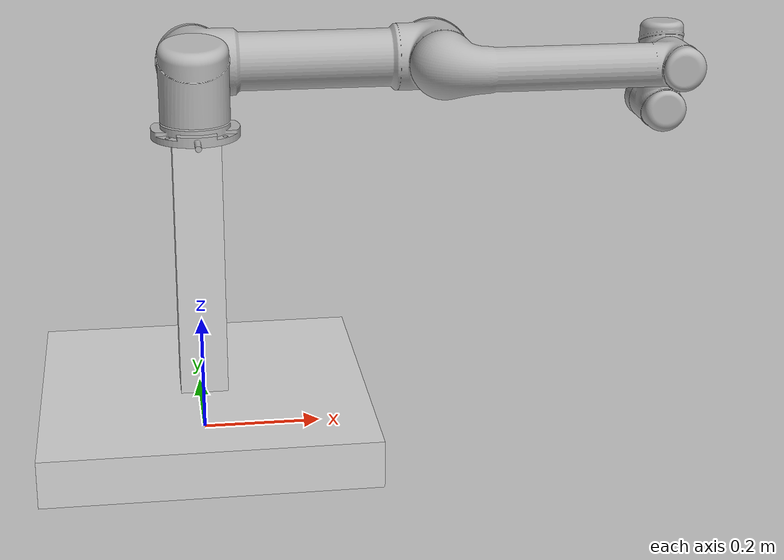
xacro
<?xml version="1.0"?>
<robot xmlns:xacro="http://ros.org/wiki/xacro"
       name="ur5" >

  <!-- common stuff -->
  <xacro:include filename="$(find ur_description)/urdf/common.gazebo.xacro"/>
  <xacro:property name="M_PI" value="3.1415926535897931" />

  <!-- ur5 -->
  <xacro:include filename="$(find ur_description)/urdf/ur5.urdf.xacro" />

  <!-- arm -->
  <xacro:ur5_robot prefix="" joint_limited="false"/>

  <!--  Foundation Link & World Link-->

  <link name="world" />

  <joint name="world_joint" type="fixed">
    <parent link="world" />
    <child link = "foundation_link" />
    <origin xyz="0.0 0.0 0.0" rpy="0.0 0.0 0.0" />
    <axis xyz="0 0 0" />
  </joint>

</robot>

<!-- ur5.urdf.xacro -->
<robot xmlns:xacro="http://ros.org/wiki/xacro">

  <xacro:include filename="$(find ur_description)/urdf/ur.transmission.xacro" />
  <xacro:include filename="$(find ur_description)/urdf/ur.gazebo.xacro" />

  <xacro:property name="pi" value="3.14159265" />

  <!-- Inertia parameters -->
  <xacro:property name="base_mass" value="4.0" />  <!-- This mass might be incorrect -->
  <xacro:property name="shoulder_mass" value="3.7000" />
  <xacro:property name="upper_arm_mass" value="8.3930" />
  <xacro:property name="forearm_mass" value="2.2750" />
  <xacro:property name="wrist_1_mass" value="1.2190" />
  <xacro:property name="wrist_2_mass" value="1.2190" />
  <xacro:property name="wrist_3_mass" value="0.1879" />

  <xacro:property name="shoulder_cog" value="0.0 0.00193 -0.02561" />
  <xacro:property name="upper_arm_cog" value="0.0 -0.024201 0.2125" />
  <xacro:property name="forearm_cog" value="0.0 0.0265 0.11993" />
  <xacro:property name="wrist_1_cog" value="0.0 0.110949 0.01634" />
  <xacro:property name="wrist_2_cog" value="0.0 0.0018 0.11099" />
  <xacro:property name="wrist_3_cog" value="0.0 0.001159 0.0" />

  <!-- Kinematic model -->
  <!-- Properties from urcontrol.conf -->
  <xacro:property name="ur5_d1" value="0.089159" />
  <xacro:property name="ur5_a2" value="-0.42500" />
  <xacro:property name="ur5_a3" value="-0.39225" />
  <xacro:property name="ur5_d4" value="0.10915" />
  <xacro:property name="ur5_d5" value="0.09465" />
  <xacro:property name="ur5_d6" value="0.0823" />

  <!-- Arbitrary offsets for shoulder/elbow joints -->
  <xacro:property name="shoulder_offset" value="0.13585" />  <!-- measured from model -->
  <xacro:property name="elbow_offset" value="-0.1197" /> <!-- measured from model -->

  <!-- link lengths used in model -->
  <xacro:property name="shoulder_height" value="${ur5_d1}" />
  <xacro:property name="upper_arm_length" value="${-ur5_a2}" />
  <xacro:property name="forearm_length" value="${-ur5_a3}" />
  <xacro:property name="wrist_1_length" value="${ur5_d4 - elbow_offset - shoulder_offset}" />
  <xacro:property name="wrist_2_length" value="${ur5_d5}" />
  <xacro:property name="wrist_3_length" value="${ur5_d6}" />
  <!--property name="shoulder_height" value="0.089159" /-->
  <!--property name="shoulder_offset" value="0.13585" /-->  <!-- shoulder_offset - elbow_offset + wrist_1_length = 0.10915 -->
  <!--property name="upper_arm_length" value="0.42500" /-->
  <!--property name="elbow_offset" value="0.1197" /-->       <!-- CAD measured -->
  <!--property name="forearm_length" value="0.39225" /-->
  <!--property name="wrist_1_length" value="0.093" /-->     <!-- CAD measured -->
  <!--property name="wrist_2_length" value="0.09465" /-->   <!-- In CAD this distance is 0.930, but in the spec it is 0.09465 -->
  <!--property name="wrist_3_length" value="0.0823" /-->

  <xacro:property name="shoulder_radius" value="0.060" />   <!-- manually measured -->
  <xacro:property name="upper_arm_radius" value="0.054" />  <!-- manually measured -->
  <xacro:property name="elbow_radius" value="0.060" />      <!-- manually measured -->
  <xacro:property name="forearm_radius" value="0.040" />    <!-- manually measured -->
  <xacro:property name="wrist_radius" value="0.045" />      <!-- manually measured -->

  <xacro:macro name="cylinder_inertial" params="radius length mass *origin">
    <inertial>
      <mass value="${mass}" />
      <xacro:insert_block name="origin" />
      <inertia ixx="${0.0833333 * mass * (3 * radius * radius + length * length)}" ixy="0.0" ixz="0.0"
        iyy="${0.0833333 * mass * (3 * radius * radius + length * length)}" iyz="0.0"
        izz="${0.5 * mass * radius * radius}" />
    </inertial>
  </xacro:macro>

  <xacro:macro name="ur5_robot" params="prefix joint_limited">

    <link name="foundation_link" >
     <inertial>
      <origin xyz="0.0 0.0 0.042" rpy="0 0 0" />
      <mass value="20"/>
      <inertia ixx ="1.0" ixz = "0" iyy = "1.0" iyz = "0" ixy = "0" izz ="1.0"/>
     </inertial>
     <visual>
        <geometry>
          <box size="0.55 0.55 0.08"/>
        </geometry>
        <origin xyz="0.0 0.0 0.042" rpy="0 0 0" />
        <material name="LightGrey">
          <color rgba="0.827 0.827 0.827 1.0"/>
        </material>
      </visual>
      <collision>
        <geometry>
          <box size="0.55 0.55 0.08"/>
        </geometry>
      </collision>
    </link>

    <gazebo reference = "foundation_link">
      <kp>100.0</kp>
      <kd>10.0</kd>
      <mu1>10</mu1>
      <mu2>10</mu2>
      <material>Gazebo/DarkGrey</material>
    </gazebo>

  <!--Pipe Link -->

   <link name="pipe_link" >
     <inertial>
      <origin xyz="0.0 0.0 0.2225" rpy="0 0 0" />
      <mass value="8"/>
      <inertia ixx ="1.0" ixz = "0" iyy = "1.0" iyz = "0" ixy = "0" izz ="1.0"/>
     </inertial>
     <visual>
        <geometry>
          <box size="0.08 0.08 0.445"/>
        </geometry>
        <origin xyz="0.0 0.0 0.2225" rpy="0 0 0" />
        <material name="LightGrey">
          <color rgba="0.827 0.827 0.827 1.0"/>
        </material>
      </visual>
      <collision>
        <geometry>
          <box size="0.08 0.08 0.445"/>
        </geometry>
      </collision>
    </link>

    <gazebo reference = "pipe_link">
      <kp>100.0</kp>
      <kd>10.0</kd>
      <mu1>10</mu1>
      <mu2>10</mu2>
      <material>Gazebo/Grey</material>
    </gazebo>

  <joint name="pipe_to_foundation" type="fixed">
    <parent link="foundation_link" />
    <child link = "pipe_link" />
    <origin xyz="0.0 0.0 0.08" rpy="0.0 0.0 0.0" />
    <axis xyz="0 0 0" />
  </joint>

  <joint name="pipe_to_base" type="fixed">
    <parent link="pipe_link" />
    <child link = "${prefix}base_link" />
    <origin xyz="0.0 0.0 0.445" rpy="0.0 0.0 0.0" />
    <axis xyz="0 0 0" />
  </joint>

  <link name="${prefix}base_link" >
      <visual>
        <geometry>
          <mesh filename="package://ur_description/meshes/ur5/visual/base.dae" />
        </geometry>
        <material name="LightGrey">
          <color rgba="0.7 0.7 0.7 1.0"/>
        </material>
      </visual>
      <collision>
        <geometry>
          <mesh filename="package://ur_description/meshes/ur5/collision/base.stl" />
        </geometry>
      </collision>
      <xacro:cylinder_inertial radius="0.06" length="0.05" mass="${base_mass}">
        <origin xyz="0.0 0.0 0.0" rpy="0 0 0" />
      </xacro:cylinder_inertial>
    </link>

    <joint name="${prefix}shoulder_pan_joint" type="revolute">
      <parent link="${prefix}base_link" />
      <child link = "${prefix}shoulder_link" />
      <origin xyz="0.0 0.0 ${shoulder_height}" rpy="0.0 0.0 0.0" />
      <axis xyz="0 0 1" />
      <xacro:unless value="${joint_limited}">
        <limit lower="${-2.0 * pi}" upper="${2.0 * pi}" effort="150.0" velocity="3.15"/>
      </xacro:unless>
      <xacro:if value="${joint_limited}">
        <limit lower="${-pi}" upper="${pi}" effort="150.0" velocity="3.15"/>
      </xacro:if>
      <dynamics damping="0.0" friction="0.0"/>
    </joint>

    <link name="${prefix}shoulder_link">
      <visual>
        <geometry>
          <mesh filename="package://ur_description/meshes/ur5/visual/shoulder.dae" />
        </geometry>
        <material name="LightGrey">
          <color rgba="0.7 0.7 0.7 1.0"/>
        </material>
      </visual>
      <collision>
        <geometry>
          <mesh filename="package://ur_description/meshes/ur5/collision/shoulder.stl" />
        </geometry>
      </collision>
      <xacro:cylinder_inertial radius="0.06" length="0.15" mass="${shoulder_mass}">
        <origin xyz="0.0 0.0 0.0" rpy="0 0 0" />
      </xacro:cylinder_inertial>
    </link>

    <joint name="${prefix}shoulder_lift_joint" type="revolute">
      <parent link="${prefix}shoulder_link" />
      <child link = "${prefix}upper_arm_link" />
      <origin xyz="0.0 ${shoulder_offset} 0.0" rpy="0.0 ${pi / 2.0} 0.0" />
      <axis xyz="0 1 0" />
      <xacro:unless value="${joint_limited}">
        <limit lower="${-2.0 * pi}" upper="${2.0 * pi}" effort="150.0" velocity="3.15"/>
      </xacro:unless>
      <xacro:if value="${joint_limited}">
        <limit lower="${-pi}" upper="${pi}" effort="150.0" velocity="3.15"/>
      </xacro:if>
      <dynamics damping="0.0" friction="0.0"/>
    </joint>

    <link name="${prefix}upper_arm_link">
      <visual>
        <geometry>
          <mesh filename="package://ur_description/meshes/ur5/visual/upperarm.dae" />
        </geometry>
        <material name="LightGrey">
          <color rgba="0.7 0.7 0.7 1.0"/>
        </material>
      </visual>
      <collision>
        <geometry>
          <mesh filename="package://ur_description/meshes/ur5/collision/upperarm.stl" />
        </geometry>
      </collision>
      <xacro:cylinder_inertial radius="0.06" length="0.56" mass="${upper_arm_mass}">
        <origin xyz="0.0 0.0 0.28" rpy="0 0 0" />
      </xacro:cylinder_inertial>
    </link>

    <joint name="${prefix}elbow_joint" type="revolute">
      <parent link="${prefix}upper_arm_link" />
      <child link = "${prefix}forearm_link" />
      <origin xyz="0.0 ${elbow_offset} ${upper_arm_length}" rpy="0.0 0.0 0.0" />
      <axis xyz="0 1 0" />
      <xacro:unless value="${joint_limited}">
        <limit lower="${-2.0 * pi}" upper="${2.0 * pi}" effort="150.0" velocity="3.15"/>
      </xacro:unless>
      <xacro:if value="${joint_limited}">
        <limit lower="${-pi}" upper="${pi}" effort="150.0" velocity="3.15"/>
      </xacro:if>
      <dynamics damping="0.0" friction="0.0"/>
    </joint>

    <link name="${prefix}forearm_link">
      <visual>
        <geometry>
          <mesh filename="package://ur_description/meshes/ur5/visual/forearm.dae" />
        </geometry>
        <material name="LightGrey">
          <color rgba="0.7 0.7 0.7 1.0"/>
        </material>
      </visual>
      <collision>
        <geometry>
          <mesh filename="package://ur_description/meshes/ur5/collision/forearm.stl" />
        </geometry>
      </collision>
      <xacro:cylinder_inertial radius="0.06" length="0.5" mass="${forearm_mass}">
        <origin xyz="0.0 0.0 0.25" rpy="0 0 0" />
      </xacro:cylinder_inertial>
    </link>

    <joint name="${prefix}wrist_1_joint" type="revolute">
      <parent link="${prefix}forearm_link" />
      <child link = "${prefix}wrist_1_link" />
      <origin xyz="0.0 0.0 ${forearm_length}" rpy="0.0 ${pi / 2.0} 0.0" />
      <axis xyz="0 1 0" />
      <xacro:unless value="${joint_limited}">
        <limit lower="${-2.0 * pi}" upper="${2.0 * pi}" effort="28.0" velocity="3.2"/>
      </xacro:unless>
      <xacro:if value="${joint_limited}">
        <limit lower="${-pi}" upper="${pi}" effort="28.0" velocity="3.2"/>
      </xacro:if>
      <dynamics damping="0.0" friction="0.0"/>
    </joint>

    <link name="${prefix}wrist_1_link">
      <visual>
        <geometry>
          <mesh filename="package://ur_description/meshes/ur5/visual/wrist1.dae" />
        </geometry>
        <material name="LightGrey">
          <color rgba="0.7 0.7 0.7 1.0"/>
        </material>
      </visual>
      <collision>
        <geometry>
          <mesh filename="package://ur_description/meshes/ur5/collision/wrist1.stl" />
        </geometry>
      </collision>
      <xacro:cylinder_inertial radius="0.6" length="0.12" mass="${wrist_1_mass}">
        <origin xyz="0.0 0.0 0.0" rpy="0 0 0" />
      </xacro:cylinder_inertial>
    </link>

    <joint name="${prefix}wrist_2_joint" type="revolute">
      <parent link="${prefix}wrist_1_link" />
      <child link = "${prefix}wrist_2_link" />
      <origin xyz="0.0 ${wrist_1_length} 0.0" rpy="0.0 0.0 0.0" />
      <axis xyz="0 0 1" />
      <xacro:unless value="${joint_limited}">
        <limit lower="${-2.0 * pi}" upper="${2.0 * pi}" effort="28.0" velocity="3.2"/>
      </xacro:unless>
      <xacro:if value="${joint_limited}">
        <limit lower="${-pi}" upper="${pi}" effort="28.0" velocity="3.2"/>
      </xacro:if>
      <dynamics damping="0.0" friction="0.0"/>
    </joint>

    <link name="${prefix}wrist_2_link">
      <visual>
        <geometry>
          <mesh filename="package://ur_description/meshes/ur5/visual/wrist2.dae" />
        </geometry>
        <material name="LightGrey">
          <color rgba="0.7 0.7 0.7 1.0"/>
        </material>
      </visual>
      <collision>
        <geometry>
          <mesh filename="package://ur_description/meshes/ur5/collision/wrist2.stl" />
        </geometry>
      </collision>
      <xacro:cylinder_inertial radius="0.6" length="0.12" mass="${wrist_2_mass}">
        <origin xyz="0.0 0.0 0.0" rpy="0 0 0" />
      </xacro:cylinder_inertial>
    </link>

    <joint name="${prefix}wrist_3_joint" type="revolute">
      <parent link="${prefix}wrist_2_link" />
      <child link = "${prefix}wrist_3_link" />
      <origin xyz="0.0 0.0 ${wrist_2_length}" rpy="0.0 0.0 0.0" />
      <axis xyz="0 1 0" />
      <xacro:unless value="${joint_limited}">
        <limit lower="${-2.0 * pi}" upper="${2.0 * pi}" effort="28.0" velocity="3.2"/>
      </xacro:unless>
      <xacro:if value="${joint_limited}">
        <limit lower="${-pi}" upper="${pi}" effort="28.0" velocity="3.2"/>
      </xacro:if>
      <dynamics damping="0.0" friction="0.0"/>
    </joint>

    <link name="${prefix}wrist_3_link">
      <visual>
        <geometry>
          <mesh filename="package://ur_description/meshes/ur5/visual/wrist3.dae" />
        </geometry>
        <material name="LightGrey">
          <color rgba="0.7 0.7 0.7 1.0"/>
        </material>
      </visual>
      <collision>
        <geometry>
          <mesh filename="package://ur_description/meshes/ur5/collision/wrist3.stl" />
        </geometry>
      </collision>
      <xacro:cylinder_inertial radius="0.6" length="0.12" mass="${wrist_3_mass}">
        <origin xyz="0.0 0.0 0.0" rpy="0 0 0" />
      </xacro:cylinder_inertial>
    </link>

    <joint name="${prefix}ee_fixed_joint" type="fixed">
      <parent link="${prefix}wrist_3_link" />
      <child link = "${prefix}ee_link" />
      <origin xyz="0.0 ${wrist_3_length} 0.0" rpy="0.0 0.0 ${pi/2.0}" />
    </joint>

    <link name="${prefix}ee_link">
      <collision>
        <geometry>
          <box size="0.01 0.01 0.01"/>
        </geometry>
        <origin rpy="0 0 0" xyz="-0.01 0 0"/>
      </collision>
    </link>

    <xacro:ur_arm_transmission prefix="${prefix}" />
    <xacro:ur_arm_gazebo prefix="${prefix}" />

    <!-- ROS base_link to UR 'Base' Coordinates transform -->
    <link name="${prefix}base"/>
    <joint name="${prefix}base_link-base_fixed_joint" type="fixed">
      <!-- NOTE: this rotation is only needed as long as base_link itself is
                 not corrected wrt the real robot (ie: rotated over 180
                 degrees)
      -->
      <origin xyz="0 0 0" rpy="0 0 ${-pi}"/>
      <parent link="${prefix}base_link"/>
      <child link="${prefix}base"/>
    </joint>

    <!-- Frame coincident with all-zeros TCP on UR controller -->
    <link name="${prefix}tool0"/>
    <joint name="${prefix}wrist_3_link-tool0_fixed_joint" type="fixed">
      <origin xyz="0 ${wrist_3_length} 0" rpy="${pi/-2.0} 0 0"/>
      <parent link="${prefix}wrist_3_link"/>
      <child link="${prefix}tool0"/>
    </joint>

  </xacro:macro>
</robot>
